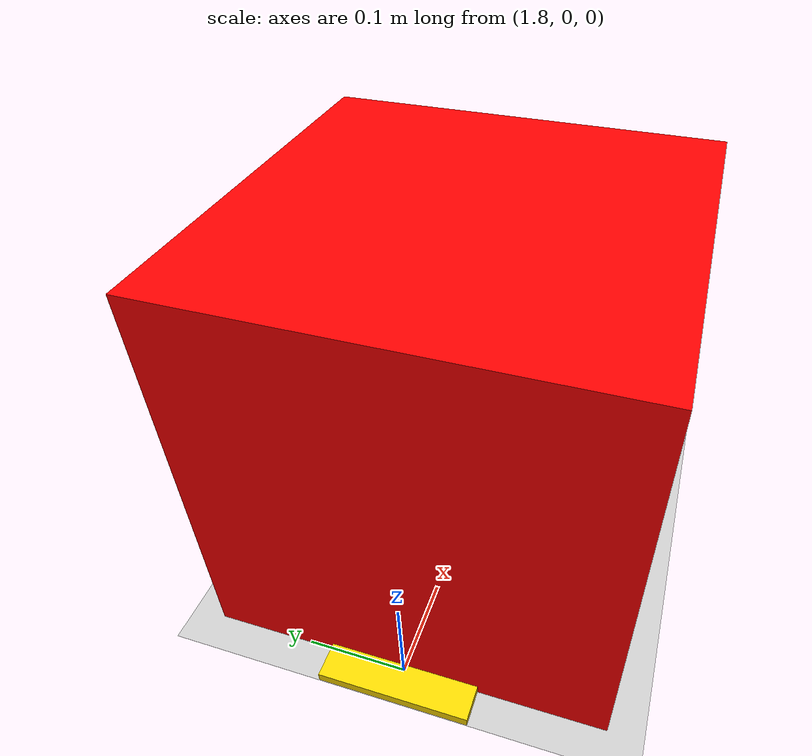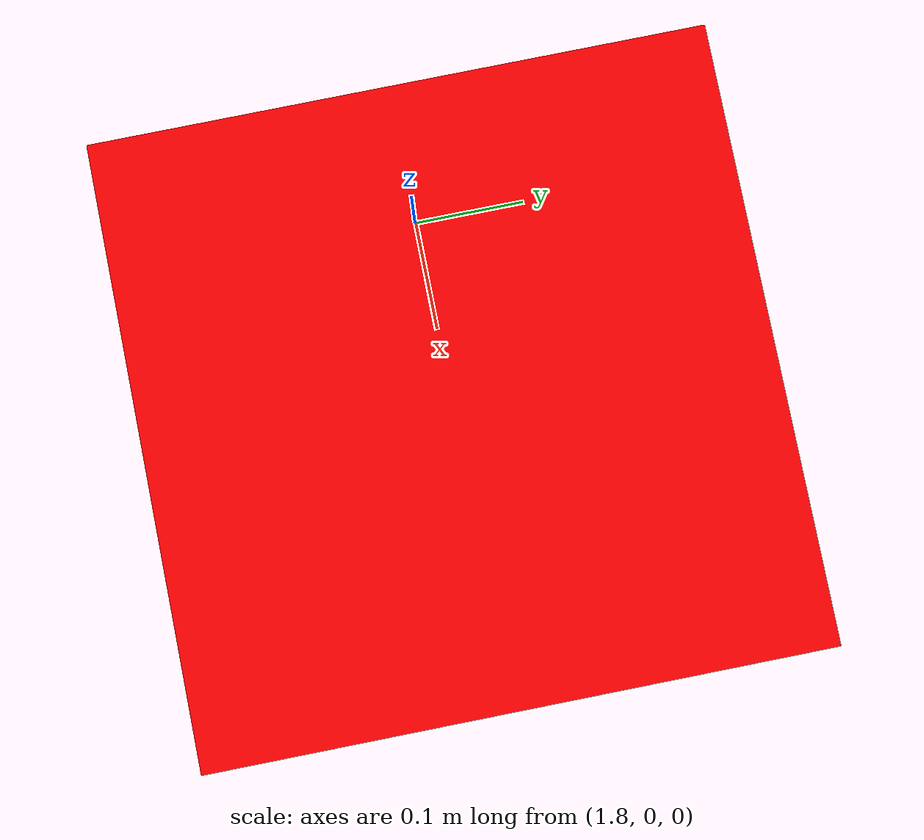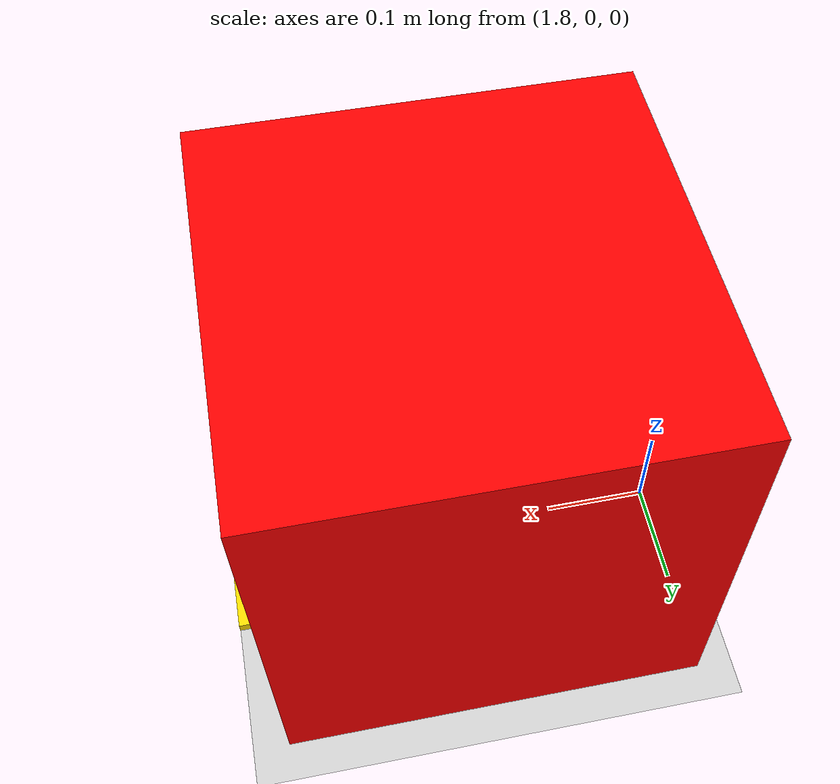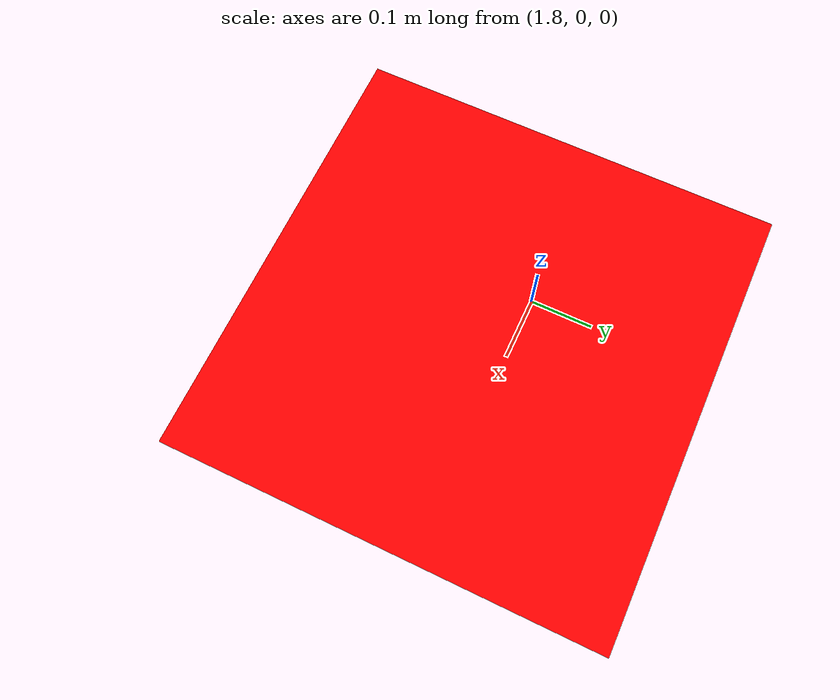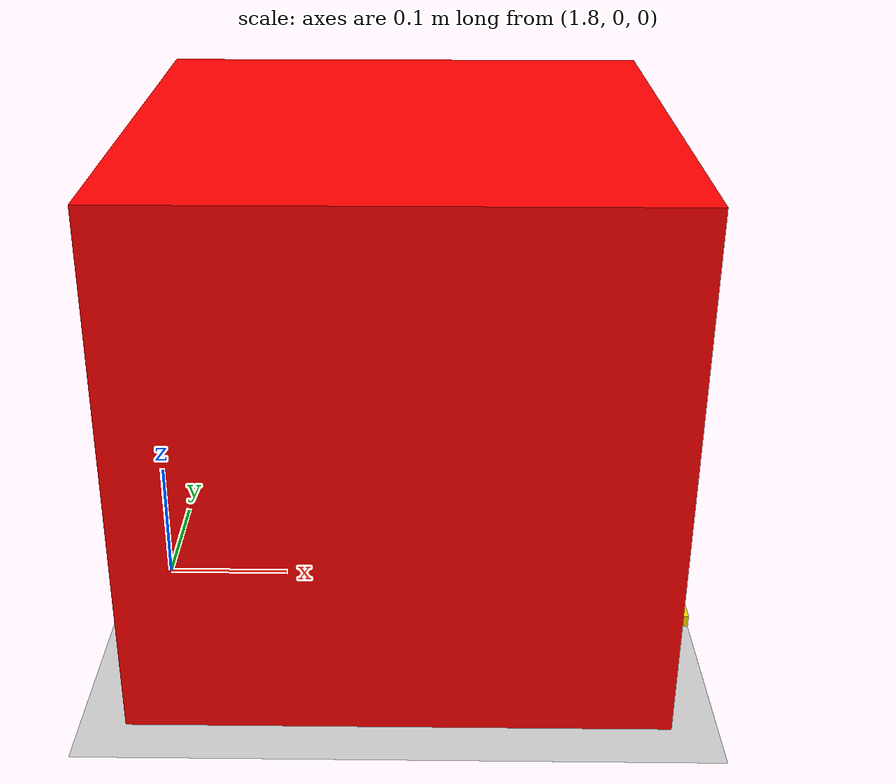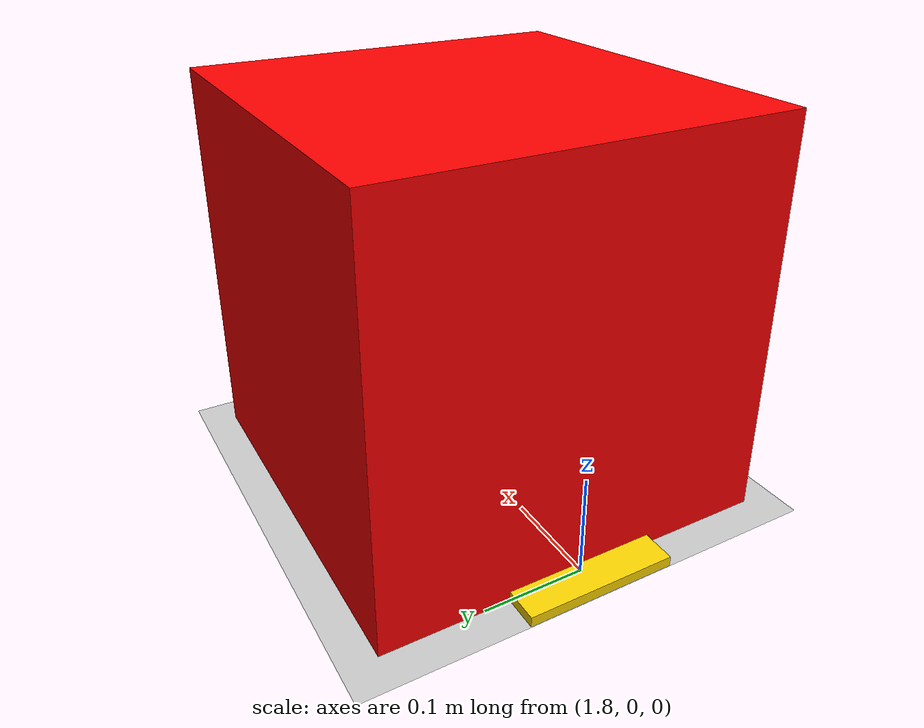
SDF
<?xml version="1.0" ?>
<sdf version="1.6">

<world name="line_following_world">

  <include>
    <uri>model://ground_plane</uri>
  </include>

  <include>
    <uri>model://sun</uri>
  </include>

  <!-- Long orange line, tracked via HSV colour filtering -->

  <model name="line_track">
    <static>true</static>

    <link name="line">

      <visual name="visual">
        <geometry>
          <box>
            <size>8 0.15 0.01</size>
          </box>
        </geometry>

        <material>
          <ambient>1 0.85 0 1</ambient>
          <diffuse>1 0.85 0 1</diffuse>
          <emissive>1 0.85 0 1</emissive>
        </material>
      </visual>

      <pose>0 0 0.005 0 0 0</pose>

    </link>

  </model>

  <!-- Obstacle -->

  <model name="obstacle_box">
    <static>true</static>

    <link name="link">

      <collision name="collision">
        <geometry>
          <box>
            <size>0.4 0.4 0.4</size>
          </box>
        </geometry>
      </collision>

      <visual name="visual">
        <geometry>
          <box>
            <size>0.4 0.4 0.4</size>
          </box>
        </geometry>

        <material>
          <ambient>1 0 0 1</ambient>
          <diffuse>1 0 0 1</diffuse>
        </material>
      </visual>

      <pose>2 0 0.2 0 0 0</pose>

    </link>

  </model>

</world>

</sdf>
